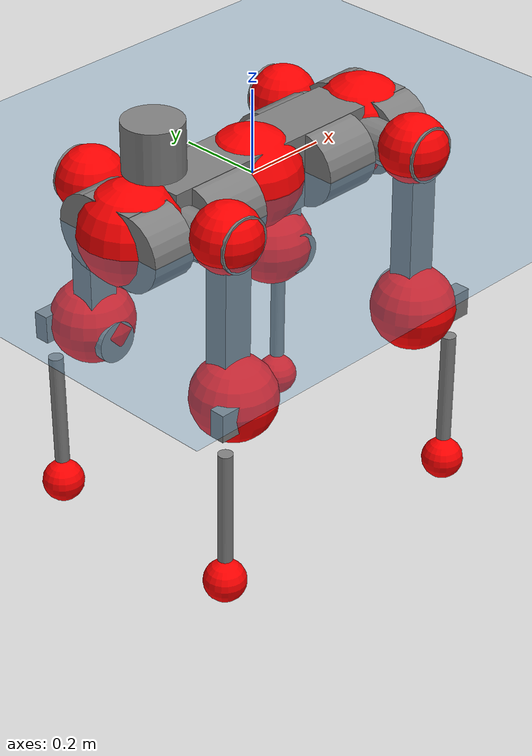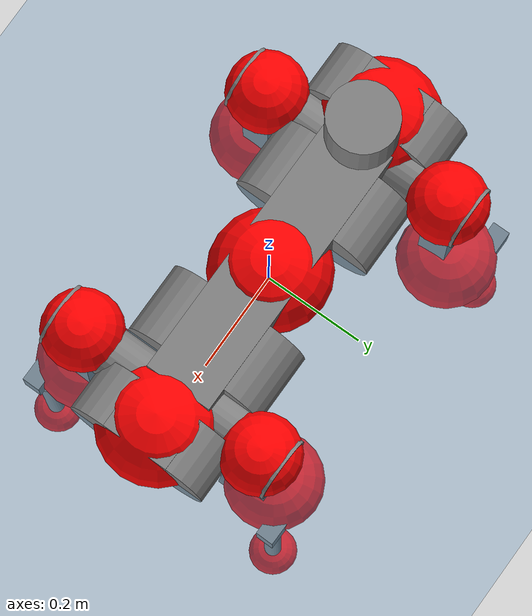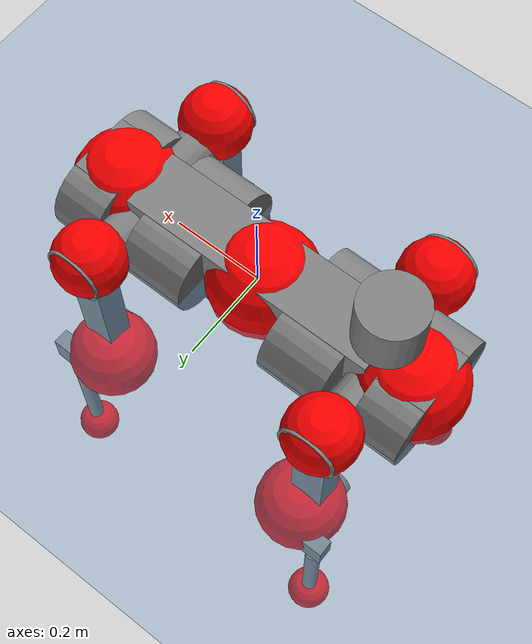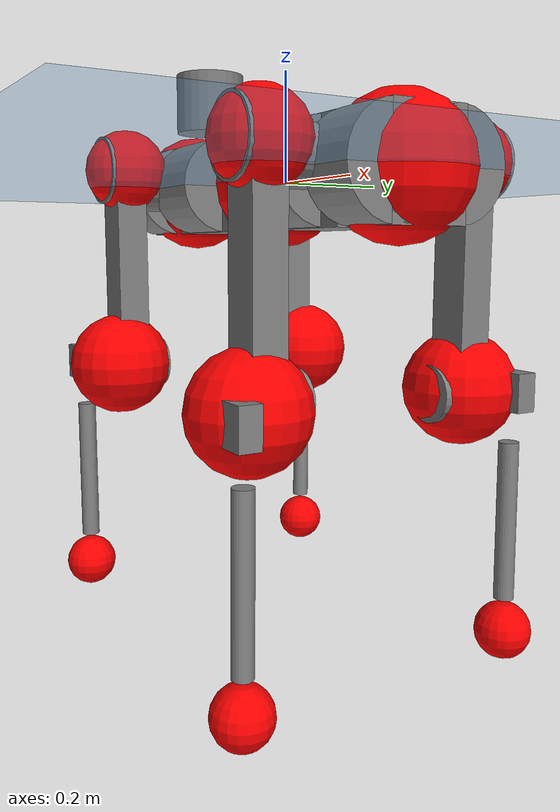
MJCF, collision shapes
<mujoco model="anymal_c">
  <compiler angle="radian" assetdir="assets" balanceinertia="true" inertiafromgeom="false"/>

  <option timestep="0.005" density="1.2" viscosity="2e-05"/>

  <size nkey="1"/>

  <visual>
    <quality shadowsize="8192"/>
    <map shadowclip="0.5"/>
  </visual>

  <default>
    <default class="/">
      <material specular="0" shininess="0.25"/>
      <geom contype="0" conaffinity="0" group="1" solref="-1000 -80"/>
      <site size="0.01 0.005 0.005" group="5"/>
      <general forcelimited="true" forcerange="-80 80" biastype="affine" gainprm="80" biasprm="0 -80 -2"/>
      <default class="anymal_c">
        <joint armature="0.01" damping="0.01" frictionloss="0.1"/>
        <default class="visual">
          <geom type="mesh" group="2"/>
          <default class="visual_zflip"/>
        </default>
        <default class="collision">
          <geom type="cylinder" group="3"/>
          <default class="foot">
            <geom size="0.03 0 0" type="sphere" condim="6" priority="1" friction="0.8 0.02 0.01" solimp="0.015 1 0.03"/>
          </default>
        </default>
      </default>
      <default class="reward_collision_sphere">
        <geom group="5" rgba="1 0 0 1"/>
      </default>
    </default>
  </default>

  <asset>
    <texture type="skybox" colorspace="auto" name="//unnamed_texture_0" builtin="gradient" rgb1="0.95 0.95 0.95" rgb2="0.95 0.95 0.95" width="100" height="600"/>
    <texture type="2d" colorspace="auto" name="texplane" builtin="checker" rgb1="0.345 0.575 0.748" rgb2="0.345 0.575 0.748" markrgb="1 1 1" width="512" height="512"/>
    <texture type="2d" colorspace="linear" name="base" file="base.png"/>
    <texture type="2d" colorspace="linear" name="top_shell" file="top_shell.png"/>
    <texture type="2d" colorspace="linear" name="bottom_shell" file="bottom_shell.png"/>
    <texture type="2d" colorspace="linear" name="remote" file="remote.png"/>
    <texture type="2d" colorspace="linear" name="hatch" file="hatch.png"/>
    <texture type="2d" colorspace="linear" name="handle" file="handle.png"/>
    <texture type="2d" colorspace="linear" name="face" file="face.png"/>
    <texture type="2d" colorspace="linear" name="battery" file="battery.png"/>
    <texture type="2d" colorspace="linear" name="lidar_cage" file="lidar_cage.png"/>
    <texture type="2d" colorspace="linear" name="depth_camera" file="depth_camera.png"/>
    <texture type="2d" colorspace="linear" name="wide_angle_camera" file="wide_angle_camera.png"/>
    <texture type="2d" colorspace="linear" name="lidar" file="lidar.png"/>
    <texture type="2d" colorspace="linear" name="drive" file="drive.png"/>
    <texture type="2d" colorspace="linear" name="hip_l" file="hip_l.png"/>
    <texture type="2d" colorspace="linear" name="shank_l" file="shank_l.png"/>
    <texture type="2d" colorspace="linear" name="foot" file="foot.png"/>
    <texture type="2d" colorspace="linear" name="thigh" file="thigh.png"/>
    <texture type="2d" colorspace="linear" name="shank_r" file="shank_r.png"/>
    <texture type="2d" colorspace="linear" name="hip_r" file="hip_r.png"/>
    <material name="MatPlane" class="/" texture="texplane" texuniform="true" texrepeat="2 2" specular="0.9" shininess="0.5"/>
    <material name="black_plastic" class="/" rgba="0.007 0.007 0.007 1"/>
    <material name="green" class="/" rgba="0.052 0.178 0.033 1"/>
    <material name="red" class="/" rgba="0.178 0.006 0.005 1"/>
    <material name="yellow" class="/" rgba="0.178 0.119 0.006 1"/>
    <material name="lwl" class="/" rgba="0.8 0.8 0.8 1"/>
    <material name="base" class="/" texture="base"/>
    <material name="top_shell" class="/" texture="top_shell"/>
    <material name="bottom_shell" class="/" texture="bottom_shell"/>
    <material name="hip_l" class="/" texture="hip_l"/>
    <material name="thigh" class="/" texture="thigh"/>
    <material name="shank_l" class="/" texture="shank_l"/>
    <material name="foot" class="/" texture="foot"/>
    <material name="hip_r" class="/" texture="hip_r"/>
    <material name="shank" class="/" texture="shank_r"/>
    <material name="hatch" class="/" texture="hatch"/>
    <material name="remote" class="/" texture="remote"/>
    <material name="handle" class="/" texture="handle"/>
    <material name="face" class="/" texture="face"/>
    <material name="depth_camera" class="/" texture="depth_camera"/>
    <material name="wide_angle_camera" class="/" texture="wide_angle_camera"/>
    <material name="battery" class="/" texture="battery"/>
    <material name="lidar_cage" class="/" texture="lidar_cage"/>
    <material name="lidar" class="/" texture="lidar"/>
    <material name="drive" class="/" texture="drive"/>
    <mesh name="base_0" class="/" file="base_0.obj"/>
    <mesh name="base_1" class="/" file="base_1.obj"/>
    <mesh name="base_2" class="/" file="base_2.obj"/>
    <mesh name="base_3" class="/" file="base_3.obj"/>
    <mesh name="base_4" class="/" file="base_4.obj"/>
    <mesh name="base_5" class="/" file="base_5.obj"/>
    <mesh name="top_shell" class="/" file="top_shell.obj"/>
    <mesh name="bottom_shell" class="/" file="bottom_shell.obj"/>
    <mesh name="remote" class="/" file="remote.obj"/>
    <mesh name="handle" class="/" file="handle.obj"/>
    <mesh name="face" class="/" file="face.obj"/>
    <mesh name="wide_angle_camera" class="/" file="wide_angle_camera.obj"/>
    <mesh name="depth_camera" class="/" file="depth_camera.obj"/>
    <mesh name="battery" class="/" file="battery.obj"/>
    <mesh name="lidar_cage" class="/" file="lidar_cage.obj"/>
    <mesh name="lidar" class="/" file="lidar.obj"/>
    <mesh name="drive" class="/" file="drive.obj"/>
    <mesh name="hip_l" class="/" file="hip_l.obj"/>
    <mesh name="thigh" class="/" file="thigh.obj"/>
    <mesh name="shank_l" class="/" file="shank_l.obj"/>
    <mesh name="foot" class="/" file="foot.obj"/>
    <mesh name="hip_r" class="/" file="hip_r.obj"/>
    <mesh name="hatch" class="/" file="hatch.obj"/>
    <mesh name="shank_r" class="/" file="shank_r.obj"/>
  </asset>

  <worldbody>
    <geom name="floor" class="/" size="100 100 0.125" type="plane" group="0" material="MatPlane"/>
    <light name="toplight_shadow" class="/" pos="0 0 5" dir="0.0990148 0.0990148 -0.990148" type="directional" ambient="0.04 0.04 0.04" diffuse="0.55 0.55 0.55" specular="0.12 0.12 0.12"/>
    <light name="toplight_fill" class="/" pos="0 0 5" dir="0.0990148 0.0990148 -0.990148" type="directional" castshadow="false" ambient="0.04 0.04 0.04" diffuse="0.3 0.3 0.3" specular="0.08 0.08 0.08"/>
    <body name="trunk" childclass="anymal_c" pos="-0.0125747 -0.00584349 0.00096833" quat="0.999998 0.000303454 -0.00100059 -0.00156923">
      <inertial pos="0.00171283 0.000893146 0.0643037" quat="0.467966 0.50176 0.518002 0.510803" mass="18.362" diaginertia="0.129584 0.192224 0.921139"/>
      <joint name="//unnamed_joint_0" type="free" armature="0" damping="0" frictionloss="0"/>
      <geom name="//unnamed_geom_1" class="visual" material="green" mesh="base_0"/>
      <geom name="//unnamed_geom_2" class="visual" material="yellow" mesh="base_1"/>
      <geom name="//unnamed_geom_3" class="visual" material="red" mesh="base_2"/>
      <geom name="//unnamed_geom_4" class="visual" material="black_plastic" mesh="base_3"/>
      <geom name="//unnamed_geom_5" class="visual" material="lwl" mesh="base_4"/>
      <geom name="//unnamed_geom_6" class="visual" material="base" mesh="base_5"/>
      <geom name="trunk_1" class="collision" size="0.285586 0.0689346 0.0886302" type="box"/>
      <geom name="trunk_2" class="collision" size="0.0886302 0.0713965" pos="0.168758 0.0584082 0" quat="0.707107 0 0.707107 0"/>
      <geom name="trunk_3" class="collision" size="0.0886302 0.0713965" pos="-0.168758 0.0584082 0" quat="0.707107 0 0.707107 0"/>
      <geom name="trunk_4" class="collision" size="0.0886302 0.0713965" pos="0.168758 -0.0584082 0" quat="0.707107 0 0.707107 0"/>
      <geom name="trunk_5" class="collision" size="0.0886302 0.0713965" pos="-0.168758 -0.0584082 0" quat="0.707107 0 0.707107 0"/>
      <geom name="//unnamed_geom_12" class="visual" material="top_shell" mesh="top_shell"/>
      <geom name="//unnamed_geom_13" class="visual" material="bottom_shell" mesh="bottom_shell"/>
      <geom name="//unnamed_geom_14" class="visual" material="remote" mesh="remote"/>
      <geom name="//unnamed_geom_15" class="visual" material="handle" mesh="handle"/>
      <geom name="//unnamed_geom_16" class="visual" pos="0.321609 0 0" quat="1 0 0 0" material="face" mesh="face"/>
      <geom name="trunk_6" class="collision" size="0.0541629 0.0689346 0.0886302" pos="0.364283 0 0" type="box"/>
      <geom name="//unnamed_geom_18" class="collision" size="0.0886302 0.0541629" pos="0.364283 0.0584082 0" quat="0.707107 0 0.707107 0"/>
      <geom name="//unnamed_geom_19" class="collision" size="0.0886302 0.0541629" pos="0.364283 -0.0584082 0" quat="0.707107 0 0.707107 0"/>
      <geom name="//unnamed_geom_20" class="visual" pos="0.358216 0 -0.0435638" quat="0.965926 0 0.258819 0" material="depth_camera" mesh="depth_camera"/>
      <geom name="//unnamed_geom_21" class="visual" pos="0.398035 0 0.0201203" material="wide_angle_camera" mesh="wide_angle_camera"/>
      <geom name="//unnamed_geom_22" class="visual_zflip" pos="-0.321609 0 0" quat="0 0 0 1" material="face" mesh="face"/>
      <geom name="trunk_7" class="collision" size="0.0541629 0.0689346 0.0886302" pos="-0.364283 0 0" quat="0 0 0 1" type="box"/>
      <geom name="//unnamed_geom_24" class="collision" size="0.0886302 0.0541629" pos="-0.364283 -0.0584082 0" quat="0 -0.707107 0 0.707107"/>
      <geom name="//unnamed_geom_25" class="collision" size="0.0886302 0.0541629" pos="-0.364283 0.0584082 0" quat="0 -0.707107 0 0.707107"/>
      <geom name="//unnamed_geom_26" class="visual" pos="-0.358216 0 -0.0435638" quat="0 -0.258819 0 0.965926" material="depth_camera" mesh="depth_camera"/>
      <geom name="//unnamed_geom_27" class="visual_zflip" pos="-0.398035 0 0.0201203" quat="0 0 0 1" material="wide_angle_camera" mesh="wide_angle_camera"/>
      <geom name="//unnamed_geom_28" class="visual" material="battery" mesh="battery"/>
      <geom name="//unnamed_geom_29" class="visual" pos="0 0.0645898 0.0347264" quat="0.683013 -0.183013 0.183013 0.683013" material="depth_camera" mesh="depth_camera"/>
      <geom name="//unnamed_geom_30" class="visual" pos="0 -0.0645898 0.0347264" quat="0.683013 0.183013 0.183013 -0.683013" material="depth_camera" mesh="depth_camera"/>
      <geom name="//unnamed_geom_31" class="visual" pos="-0.282426 0 0.0987869" quat="1 0 0 0" material="lidar_cage" mesh="lidar_cage"/>
      <geom name="trunk_8" class="collision" size="0.0689346 0.0590868" pos="-0.282426 0 0.179429"/>
      <geom name="//unnamed_geom_33" class="visual" pos="-0.282426 2.29857e-05 0.191122" quat="0.707107 0 0 -0.707107" material="lidar" mesh="lidar"/>
      <geom name="//unnamed_geom_34" class="visual" pos="0.232691 0.086959 -8.79127e-09" quat="0.258819 0.965926 0 0" material="drive" mesh="drive"/>
      <geom name="//unnamed_geom_35" class="visual" pos="0.232691 -0.086959 8.79127e-09" quat="0.258819 -0.965926 0 0" material="drive" mesh="drive"/>
      <geom name="//unnamed_geom_36" class="visual" pos="-0.232691 0.086959 8.79127e-09" quat="0 0 0.965926 -0.258819" material="drive" mesh="drive"/>
      <geom name="//unnamed_geom_37" class="visual" pos="-0.232691 -0.086959 -8.79127e-09" quat="0 0 -0.965926 -0.258819" material="drive" mesh="drive"/>
      <geom name="//unnamed_geom_38" class="visual" pos="0.090004 0 0.0981149" quat="1 0 0 0" material="hatch" mesh="hatch"/>
      <geom name="//unnamed_geom_39" class="reward_collision_sphere" size="0.118174"/>
      <geom name="//unnamed_geom_40" class="reward_collision_sphere" size="0.118174" pos="0.349154 0 0"/>
      <geom name="//unnamed_geom_41" class="reward_collision_sphere" size="0.118174" pos="-0.349154 0 0"/>
      <site name="imu" pos="0.171857 0.0176412 0.132631" size="0.0098478"/>
      <camera name="track" pos="0 -1.66881 0" quat="0.707107 0.707107 0 0" mode="trackcom"/>
      <camera name="ego_camera" pos="0.349154 0 -0.0537616" quat="-0.5 -0.5 0.5 0.5"/>
      <body name="LF_HIP" pos="0.23202 0.0884951 0.00823442" quat="0.261025 0.965317 -0.00352471 -0.00404977">
        <inertial pos="0.0574747 -0.00670316 -0.0117491" quat="-0.123608 0.709618 -0.136513 0.680094" mass="2.77541" diaginertia="0.00171854 0.00224363 0.0148091"/>
        <joint name="LF_HAA" pos="0 0 0" axis="0.997016 0.0104253 -0.0764879" stiffness="0.0635078" range="-0.699082 0.479059" armature="0.0163289" damping="0" frictionloss="0.0635148"/>
        <geom name="//unnamed_geom_42" class="visual" pos="0 -0.000517151 8.49416e-05" quat="0.258819 -0.965926 0 0" material="hip_l" mesh="hip_l"/>
        <geom name="//unnamed_geom_43" class="visual" pos="0.0464762 -0.0572672 -0.0368328" quat="0.183013 -0.683013 0.683013 0.183013" material="drive" mesh="drive"/>
        <geom name="//unnamed_geom_44" class="collision" size="0.049239 0.0689346" pos="0.0464762 -0.0099793 -0.00928059" quat="-0.353553 -0.612372 0.612372 -0.353553"/>
        <body name="LF_THIGH" pos="0.0554643 -0.0607021 -0.0485774" quat="0.184686 -0.683942 0.682283 0.180568">
          <inertial pos="0.0247821 0.000244003 -0.315618" quat="0.992842 -0.0380493 -0.0715887 0.0877069" mass="3.10319" diaginertia="0.00906113 0.0128806 0.0195366"/>
          <joint name="LF_HFE" pos="0 0 0" axis="0.999274 -0.0035885 -0.0379299" stiffness="0.0434085" range="-3.26599 3.13787" armature="0.00363764" damping="0.0442551" frictionloss="0.138639"/>
          <geom name="//unnamed_geom_45" class="visual" pos="-0.00116405 -1.83427e-06 0" quat="0.707107 0 0 -0.707107" material="thigh" mesh="thigh"/>
          <geom name="//unnamed_geom_46" class="collision" size="0.0640107 0.0393912" pos="0.0310359 0 0" quat="0.5 0.5 -0.5 -0.5"/>
          <geom name="//unnamed_geom_47" class="collision" size="0.0369292 0.0295434 0.139163" pos="0.0232769 0 -0.189932" quat="0.707107 0 0 -0.707107" type="box"/>
          <geom name="//unnamed_geom_48" class="visual" pos="0.0778224 0 -0.383051" quat="1 0 0 0" material="drive" mesh="drive"/>
          <geom name="//unnamed_geom_49" class="collision" size="0.049239 0.0689346" pos="0.0235097 0 -0.383051" quat="0.707107 0 0.707107 0"/>
          <geom name="//unnamed_geom_50" class="reward_collision_sphere" size="0.0787824" pos="0.0193974 0 0"/>
          <body name="LF_SHANK" pos="0.0779735 0.0149926 -0.379417" quat="0.999988 0.000112491 -0.0042695 -0.00250124">
            <inertial pos="-0.00272946 -0.0474855 -0.109339" quat="0.992351 -0.0960681 0.0574561 -0.0520552" mass="0.448569" diaginertia="0.0028894 0.00337843 0.00502879"/>
            <joint name="LF_KFE" pos="0 0 0" axis="0.999662 -0.0229219 0.0122754" range="-3.12845 3.1889" armature="0.00966407" damping="0.0531036" frictionloss="0.0915049"/>
            <geom name="//unnamed_geom_51" class="visual" pos="-0.000379572 -0.0020239 0" quat="0.707107 0 0 -0.707107" material="shank_l" mesh="shank_l"/>
            <geom name="LF_kfe_act" class="collision" size="0.0590868 0.0196956" pos="0.0155179 0 0" quat="0.5 0.5 -0.5 -0.5"/>
            <geom name="//unnamed_geom_53" class="collision" size="0.0566238 0.0332363 0.0187108" pos="0.0155179 -0.0479774 0" quat="0.5 0.5 -0.5 -0.5" type="box"/>
            <geom name="//unnamed_geom_54" class="visual" pos="0.0101255 -0.074038 -0.454245" quat="0.382683 0 0 -0.92388" material="foot" mesh="foot"/>
            <geom name="LF_calf" class="collision" size="0.0172336 0.139102" pos="0.0101255 -0.0733858 -0.227122" quat="0.707107 0 0 -0.707107"/>
            <geom name="LF_foot" class="foot" size="0.0186216" pos="0.0101255 -0.0733858 -0.424004" quat="0.707107 0 0 -0.707107"/>
            <geom name="//unnamed_geom_57" class="reward_collision_sphere" size="0.098478" pos="-0.0387948 0 0"/>
            <geom name="//unnamed_geom_58" class="reward_collision_sphere" size="0.049239" pos="0.0101255 -0.0733858 -0.424004"/>
            <site name="LF_foot" class="foot" pos="0.0101255 -0.0733858 -0.424004" quat="0.707107 0 0 -0.707107" size="0.0098478"/>
          </body>
        </body>
      </body>
      <body name="RF_HIP" pos="0.247418 -0.101031 0.0113256" quat="0.25887 -0.965912 9.56061e-05 0.00019055">
        <inertial pos="0.029706 0.00856198 0.00195272" quat="0.1701 0.677545 0.102629 0.708142" mass="2.13561" diaginertia="0.00137519 0.00183594 0.0118374"/>
        <joint name="RF_HAA" pos="0 0 0" axis="0.998096 0.0479558 -0.0387999" range="-0.223518 0.680777" armature="0.0107921" damping="0.00190476" frictionloss="0.15571"/>
        <geom name="//unnamed_geom_59" class="visual" pos="0 0.000517147 8.49414e-05" quat="0.258819 0.965926 0 0" material="hip_r" mesh="hip_r"/>
        <geom name="//unnamed_geom_60" class="visual" pos="0.0464762 0.0572672 -0.0368328" quat="0.183013 0.683013 0.683013 -0.183013" material="drive" mesh="drive"/>
        <geom name="//unnamed_geom_61" class="collision" size="0.049239 0.0689346" pos="0.0464762 0.0099793 -0.00928059" quat="-0.353553 0.612372 0.612372 0.353553"/>
        <body name="RF_THIGH" pos="0.0460914 0.0651413 -0.064638" quat="0.183149 0.682495 0.683128 -0.184373">
          <inertial pos="0.0313241 -0.0154636 -0.334413" quat="0.992632 -0.00888388 -0.0839737 0.0868932" mass="2.75858" diaginertia="0.00834457 0.0109711 0.0171154"/>
          <joint name="RF_HFE" pos="0 0 0" axis="0.999448 -0.0240767 -0.0228911" range="-3.10212 2.99449" armature="0.0122051" damping="0.0550278" frictionloss="0.0836409"/>
          <geom name="//unnamed_geom_62" class="visual" pos="-0.00116405 -1.83427e-06 0" quat="0.707107 0 0 -0.707107" material="thigh" mesh="thigh"/>
          <geom name="//unnamed_geom_63" class="collision" size="0.0640107 0.0393912" pos="0.0310359 0 0" quat="0.5 0.5 0.5 0.5"/>
          <geom name="//unnamed_geom_64" class="collision" size="0.0369292 0.0295434 0.139163" pos="0.0232769 0 -0.189932" quat="0.707107 0 0 0.707107" type="box"/>
          <geom name="//unnamed_geom_65" class="visual" pos="0.0778224 0 -0.383051" quat="1 0 0 0" material="drive" mesh="drive"/>
          <geom name="//unnamed_geom_66" class="collision" size="0.049239 0.0689346" pos="0.0235097 0 -0.383051" quat="0.707107 0 0.707107 0"/>
          <geom name="//unnamed_geom_67" class="reward_collision_sphere" size="0.0787824" pos="0.0193974 0 0"/>
          <body name="RF_SHANK" pos="0.0758503 -0.00447114 -0.394855" quat="0.999974 -0.00719341 -0.000142599 -0.000590249">
            <inertial pos="-0.0113853 0.0602345 -0.120014" quat="0.992542 0.115805 -0.00920612 0.0369537" mass="0.663098" diaginertia="0.0026715 0.00327103 0.00414064"/>
            <joint name="RF_KFE" pos="0 0 0" axis="0.999734 -0.0230431 0.00133331" range="-2.8677 3.15702" armature="0.00867485" damping="0" frictionloss="0.0376975"/>
            <geom name="//unnamed_geom_68" class="visual" pos="-0.00037957 0.00202389 0" quat="0.707107 0 0 0.707107" material="shank" mesh="shank_r"/>
            <geom name="RF_kfe_act" class="collision" size="0.0590868 0.0196956" pos="0.0155179 0 0" quat="0.5 0.5 0.5 0.5"/>
            <geom name="//unnamed_geom_70" class="collision" size="0.0566238 0.0332363 0.0187108" pos="0.0155179 0.0479774 0" quat="0.5 0.5 0.5 0.5" type="box"/>
            <geom name="//unnamed_geom_71" class="visual" pos="0.0101254 0.074038 -0.454245" quat="0.382683 0 0 0.92388" material="foot" mesh="foot"/>
            <geom name="RF_calf" class="collision" size="0.0172336 0.139102" pos="0.0101255 0.0733858 -0.227122" quat="0.707107 0 0 0.707107"/>
            <geom name="RF_foot" class="foot" size="0.031976" pos="0.0101255 0.0733858 -0.424004" quat="0.707107 0 0 0.707107"/>
            <geom name="//unnamed_geom_74" class="reward_collision_sphere" size="0.098478" pos="-0.0387948 0 0"/>
            <geom name="//unnamed_geom_75" class="reward_collision_sphere" size="0.049239" pos="0.0101255 0.0733858 -0.424004"/>
            <site name="RF_foot" class="foot" pos="0.0101255 0.0733858 -0.424004" quat="0.707107 0 0 0.707107" size="0.0098478"/>
          </body>
        </body>
      </body>
      <body name="LH_HIP" pos="-0.248573 0.0990661 0.0031422" quat="-0.000338906 0.000729971 0.966466 -0.256793">
        <inertial pos="0.0303227 0.0280516 -0.0100235" quat="0.124386 0.637667 0.154015 0.744439" mass="2.85612" diaginertia="0.00171233 0.00199291 0.016389"/>
        <joint name="LH_HAA" pos="0 0 0" axis="0.999466 -0.0295452 0.0139624" stiffness="0.00126442" range="-0.683534 0.60486" armature="0.0095296" damping="0.00744309" frictionloss="0.124283"/>
        <geom name="//unnamed_geom_76" class="visual" pos="0 0.000517147 8.49414e-05" quat="-0.258819 -0.965926 0 0" material="hip_r" mesh="hip_r"/>
        <geom name="//unnamed_geom_77" class="visual" pos="0.0464762 0.0572672 -0.0368328" quat="0.183013 0.683013 0.683013 -0.183013" material="drive" mesh="drive"/>
        <geom name="//unnamed_geom_78" class="collision" size="0.049239 0.0689346" pos="0.0464762 0.0099793 -0.00928059" quat="-0.353553 0.612372 0.612372 0.353553"/>
        <body name="LH_THIGH" pos="0.0386288 0.0547831 -0.0561977" quat="0.183183 0.684452 0.682113 -0.18081">
          <inertial pos="0.0205792 -0.0140197 -0.330788" quat="0.996793 -0.00828738 -0.0708152 0.0363437" mass="2.45837" diaginertia="0.00831842 0.0104771 0.0190564"/>
          <joint name="LH_HFE" pos="0 0 0" axis="0.997895 0.0439474 -0.0476797" stiffness="0.0501453" range="-3.33317 2.96273" armature="0.0036072" damping="0" frictionloss="0.040796"/>
          <geom name="//unnamed_geom_79" class="visual" pos="-0.00116405 -1.83427e-06 0" quat="0.707107 0 0 -0.707107" material="thigh" mesh="thigh"/>
          <geom name="//unnamed_geom_80" class="collision" size="0.0640107 0.0393912" pos="0.0310359 0 0" quat="0.5 0.5 -0.5 -0.5"/>
          <geom name="//unnamed_geom_81" class="collision" size="0.0369292 0.0295434 0.139163" pos="0.0232769 0 -0.189932" quat="0.707107 0 0 -0.707107" type="box"/>
          <geom name="//unnamed_geom_82" class="visual" pos="0.0778224 0 -0.383051" quat="1 0 0 0" material="drive" mesh="drive"/>
          <geom name="//unnamed_geom_83" class="collision" size="0.049239 0.0689346" pos="0.0235097 0 -0.383051" quat="0.707107 0 0.707107 0"/>
          <geom name="//unnamed_geom_84" class="reward_collision_sphere" size="0.0787824" pos="0.0193974 0 0"/>
          <body name="LH_SHANK" pos="0.0865739 -0.0113414 -0.368303" quat="0.999972 -0.000891454 0.00736022 0.000845524">
            <inertial pos="0.00276838 0.0510838 -0.124153" quat="0.996569 0.0777497 0.00514178 0.0279204" mass="0.659896" diaginertia="0.00288465 0.00408976 0.00496257"/>
            <joint name="LH_KFE" pos="0 0 0" axis="0.999572 -0.0245301 0.0159465" stiffness="0.0338445" range="-3.2159 3.31897" armature="0.00808265" damping="0.01566" frictionloss="0.151803"/>
            <geom name="//unnamed_geom_85" class="visual" pos="-0.00037957 0.00202389 0" quat="-0.707107 0 0 -0.707107" material="shank" mesh="shank_r"/>
            <geom name="LH_kfe_act" class="collision" size="0.0590868 0.0196956" pos="0.0155179 0 0" quat="0.5 0.5 -0.5 -0.5"/>
            <geom name="//unnamed_geom_87" class="collision" size="0.0566238 0.0332363 0.0187108" pos="0.0155179 0.0479774 0" quat="0.5 0.5 -0.5 -0.5" type="box"/>
            <geom name="//unnamed_geom_88" class="visual" pos="0.0101254 0.074038 -0.454245" quat="-0.382683 0 0 -0.92388" material="foot" mesh="foot"/>
            <geom name="LH_calf" class="collision" size="0.0172336 0.139102" pos="0.0101255 0.0733858 -0.227122" quat="0.707107 0 0 -0.707107"/>
            <geom name="LH_foot" class="foot" size="0.0420583" pos="0.0101255 0.0733858 -0.424004" quat="0.707107 0 0 -0.707107"/>
            <geom name="//unnamed_geom_91" class="reward_collision_sphere" size="0.098478" pos="-0.0387948 0 0"/>
            <geom name="//unnamed_geom_92" class="reward_collision_sphere" size="0.049239" pos="0.0101255 0.0733858 -0.424004"/>
            <site name="LH_foot" class="foot" pos="0.0101255 0.0733858 -0.424004" quat="0.707107 0 0 -0.707107" size="0.0098478"/>
          </body>
        </body>
      </body>
      <body name="RH_HIP" pos="-0.218918 -0.0930665 0.00169219" quat="0.00190857 0.00124378 -0.965564 -0.260154">
        <inertial pos="0.0338562 -0.0203988 -0.0103783" quat="-0.15869 0.745724 -0.104724 0.63855" mass="2.77337" diaginertia="0.00153121 0.00182442 0.0133063"/>
        <joint name="RH_HAA" pos="0 0 0" axis="0.997435 0.0152462 -0.069934" stiffness="0.0126276" range="-0.702298 0.390869" armature="0.0129649" damping="0" frictionloss="0.0995137"/>
        <geom name="//unnamed_geom_93" class="visual" pos="0 -0.000517151 8.49416e-05" quat="-0.258819 0.965926 0 0" material="hip_l" mesh="hip_l"/>
        <geom name="//unnamed_geom_94" class="visual" pos="0.0464762 -0.0572672 -0.0368328" quat="-0.183013 0.683013 -0.683013 -0.183013" material="drive" mesh="drive"/>
        <geom name="//unnamed_geom_95" class="collision" size="0.049239 0.0689346" pos="0.0464762 -0.0099793 -0.00928059" quat="0.353553 0.612372 -0.612372 0.353553"/>
        <body name="RH_THIGH" pos="0.0447988 -0.0566403 -0.068863" quat="-0.180385 0.683698 -0.683236 -0.182228">
          <inertial pos="0.0199509 0.000705072 -0.334855" quat="0.988744 -0.0749368 -0.0687553 0.109743" mass="3.0936" diaginertia="0.00860106 0.0104216 0.0149637"/>
          <joint name="RH_HFE" pos="0 0 0" axis="0.99979 -0.018056 0.00968742" stiffness="0.0495248" range="-3.13121 3.03313" armature="0.00468518" damping="0.0650212" frictionloss="0.134121"/>
          <geom name="//unnamed_geom_96" class="visual" pos="-0.00116405 -1.83427e-06 0" quat="0.707107 0 0 -0.707107" material="thigh" mesh="thigh"/>
          <geom name="//unnamed_geom_97" class="collision" size="0.0640107 0.0393912" pos="0.0310359 0 0" quat="0.5 0.5 0.5 0.5"/>
          <geom name="//unnamed_geom_98" class="collision" size="0.0369292 0.0295434 0.139163" pos="0.0232769 0 -0.189932" quat="0.707107 0 0 0.707107" type="box"/>
          <geom name="//unnamed_geom_99" class="visual" pos="0.0778224 0 -0.383051" quat="1 0 0 0" material="drive" mesh="drive"/>
          <geom name="//unnamed_geom_100" class="collision" size="0.049239 0.0689346" pos="0.0235097 0 -0.383051" quat="0.707107 0 0.707107 0"/>
          <geom name="//unnamed_geom_101" class="reward_collision_sphere" size="0.0787824" pos="0.0193974 0 0"/>
          <body name="RH_SHANK" pos="0.0802341 -0.000302775 -0.381915" quat="1 0.000121886 3.99029e-05 7.21825e-05">
            <inertial pos="0.016643 -0.036618 -0.12205" quat="0.993295 -0.112536 -0.00217653 -0.026387" mass="0.488187" diaginertia="0.00324947 0.00323126 0.00506533"/>
            <joint name="RH_KFE" pos="0 0 0" axis="0.999723 0.021058 0.0104907" stiffness="0.0120701" range="-3.03189 2.86665" armature="0.0103282" damping="0" frictionloss="0.0299658"/>
            <geom name="//unnamed_geom_102" class="visual" pos="-0.000379572 -0.0020239 0" quat="0.707107 0 0 -0.707107" material="shank_l" mesh="shank_l"/>
            <geom name="RH_kfe_act" class="collision" size="0.0590868 0.0196956" pos="0.0155179 0 0" quat="0.5 0.5 0.5 0.5"/>
            <geom name="//unnamed_geom_104" class="collision" size="0.0566238 0.0332363 0.0187108" pos="0.0155179 -0.0479774 0" quat="0.5 0.5 0.5 0.5" type="box"/>
            <geom name="//unnamed_geom_105" class="visual" pos="0.0101255 -0.074038 -0.454245" quat="0.382683 0 0 -0.92388" material="foot" mesh="foot"/>
            <geom name="RH_calf" class="collision" size="0.0172336 0.139102" pos="0.0101255 -0.0733858 -0.227122" quat="0.707107 0 0 0.707107"/>
            <geom name="RH_foot" class="foot" size="0.0147087" pos="0.0101255 -0.0733858 -0.424004" quat="0.707107 0 0 0.707107"/>
            <geom name="//unnamed_geom_108" class="reward_collision_sphere" size="0.098478" pos="-0.0387948 0 0"/>
            <geom name="//unnamed_geom_109" class="reward_collision_sphere" size="0.049239" pos="0.0101255 -0.0733858 -0.424004"/>
            <site name="RH_foot" class="foot" pos="0.0101255 -0.0733858 -0.424004" quat="0.707107 0 0 0.707107" size="0.0098478"/>
          </body>
        </body>
      </body>
    </body>
  </worldbody>

  <contact>
    <pair class="/" geom1="floor" geom2="LF_foot" name="//unnamed_contact_0"/>
    <pair class="/" geom1="floor" geom2="RF_foot" name="//unnamed_contact_1"/>
    <pair class="/" geom1="floor" geom2="LH_foot" name="//unnamed_contact_2"/>
    <pair class="/" geom1="floor" geom2="RH_foot" name="//unnamed_contact_3"/>
  </contact>

  <actuator>
    <general name="LF_HAA" class="/" joint="LF_HAA" forcerange="-83.6869 83.6869" gainprm="76.2858" biasprm="0 -76.2858 -1.73621"/>
    <general name="LF_HFE" class="/" joint="LF_HFE" forcerange="-113.297 113.297" gainprm="76.2858" biasprm="0 -76.2858 -1.73621"/>
    <general name="LF_KFE" class="/" joint="LF_KFE" forcerange="-60.1705 60.1705" gainprm="76.2858" biasprm="0 -76.2858 -1.73621"/>
    <general name="RF_HAA" class="/" joint="RF_HAA" forcerange="-84.686 84.686" gainprm="76.2858" biasprm="0 -76.2858 -1.73621"/>
    <general name="RF_HFE" class="/" joint="RF_HFE" forcerange="-73.2844 73.2844" gainprm="76.2858" biasprm="0 -76.2858 -1.73621"/>
    <general name="RF_KFE" class="/" joint="RF_KFE" forcerange="-53.9346 53.9346" gainprm="76.2858" biasprm="0 -76.2858 -1.73621"/>
    <general name="LH_HAA" class="/" joint="LH_HAA" forcerange="-83.8032 83.8032" gainprm="76.2858" biasprm="0 -76.2858 -1.73621"/>
    <general name="LH_HFE" class="/" joint="LH_HFE" forcerange="-52.9015 52.9015" gainprm="76.2858" biasprm="0 -76.2858 -1.73621"/>
    <general name="LH_KFE" class="/" joint="LH_KFE" forcerange="-102.406 102.406" gainprm="76.2858" biasprm="0 -76.2858 -1.73621"/>
    <general name="RH_HAA" class="/" joint="RH_HAA" forcerange="-81.1063 81.1063" gainprm="76.2858" biasprm="0 -76.2858 -1.73621"/>
    <general name="RH_HFE" class="/" joint="RH_HFE" forcerange="-64.8573 64.8573" gainprm="76.2858" biasprm="0 -76.2858 -1.73621"/>
    <general name="RH_KFE" class="/" joint="RH_KFE" forcerange="-122.923 122.923" gainprm="76.2858" biasprm="0 -76.2858 -1.73621"/>
  </actuator>

  <sensor>
    <gyro site="imu" name="imu_angular_velocity"/>
    <velocimeter site="imu" name="imu_linear_velocity"/>
    <framelinvel objtype="site" objname="LF_foot" name="LF_foot_global_linear_velocity"/>
    <framelinvel objtype="site" objname="RF_foot" name="RF_foot_global_linear_velocity"/>
    <framelinvel objtype="site" objname="LH_foot" name="LH_foot_global_linear_velocity"/>
    <framelinvel objtype="site" objname="RH_foot" name="RH_foot_global_linear_velocity"/>
  </sensor>

  <keyframe>
    <key name="home" qpos="0 0 0.55 1 0 0 0 0 0.4 -0.8 0 -0.4 0.8 0 -0.4 0.8 0 0.4 -0.8"/>
  </keyframe>
</mujoco>
